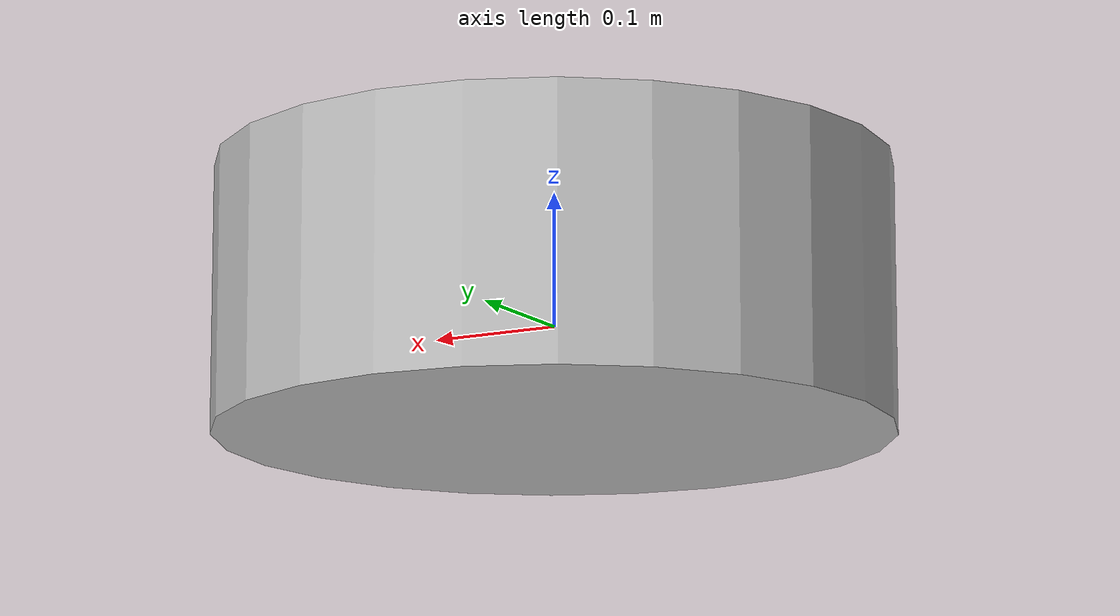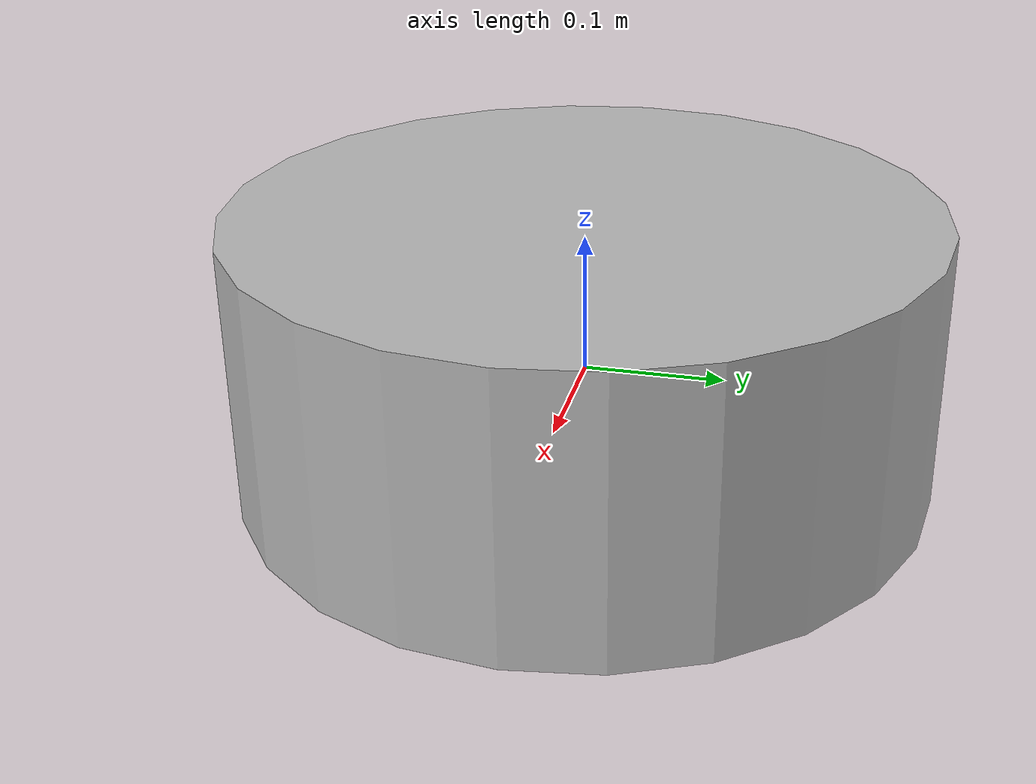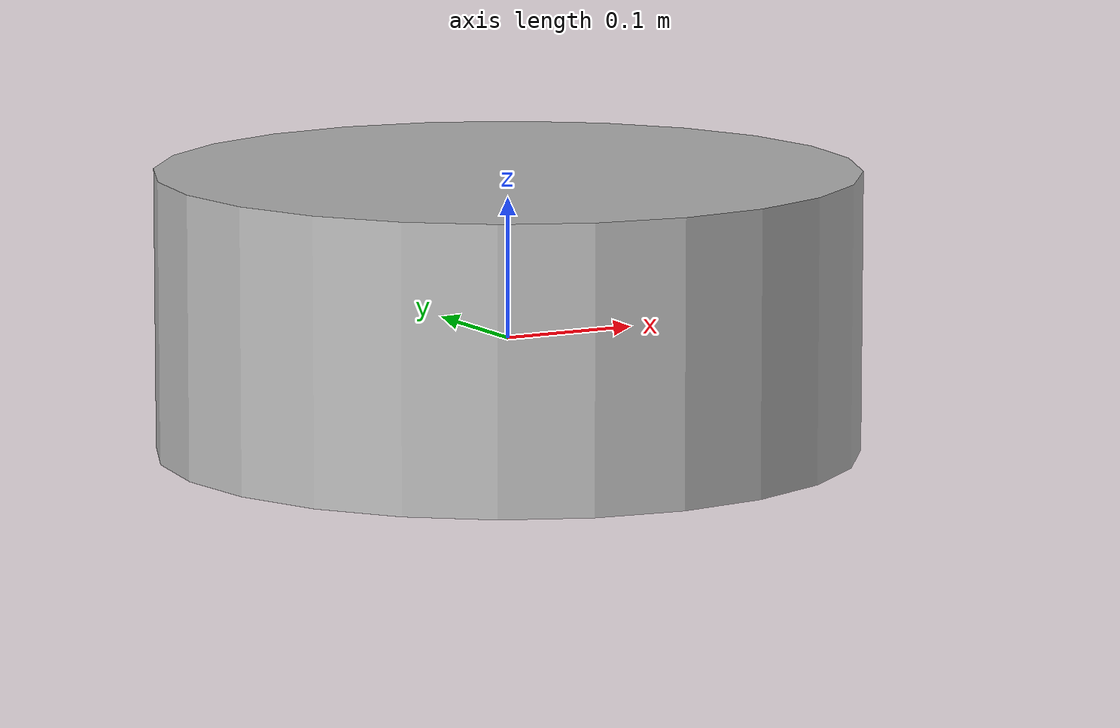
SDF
<?xml version="1.0" ?>
<sdf version="1.6">
  <model name="speed_bump">
    <static>1</static>
    <link name="link">
      <pose>0 0 0.02 0 0 0</pose>
      <visual name="visual">
        <geometry>
          <cylinder>
            <radius>0.25</radius>
            <length>0.2</length>
          </cylinder>
        </geometry>
        <material>
          <script>
            <uri>model://speed_bump/materials/scripts</uri>
            <uri>model://speed_bump/materials/textures</uri>
            <name>SpeedBumpTexture</name>
          </script>
        </material>
      </visual>
      <collision name="collision">
        <geometry>
          <cylinder>
            <radius>0.25</radius>
            <length>0.2</length>
          </cylinder>
        </geometry>
      </collision>
    </link>
  </model>
</sdf>
